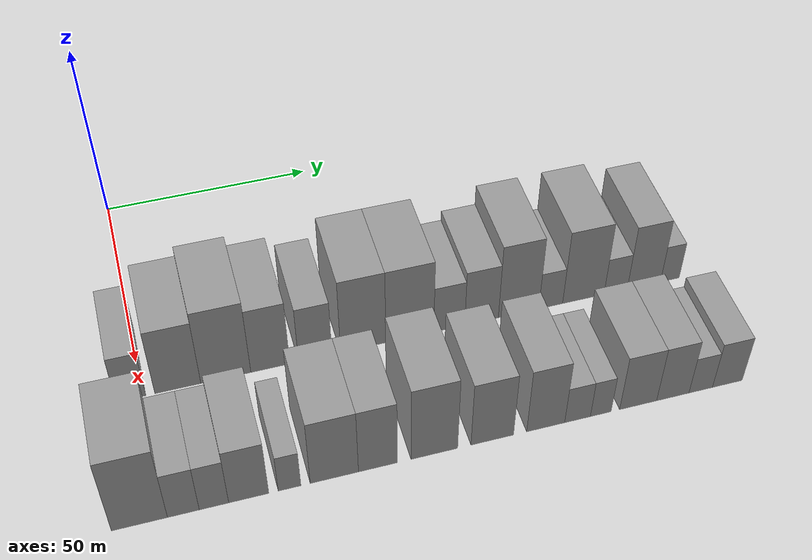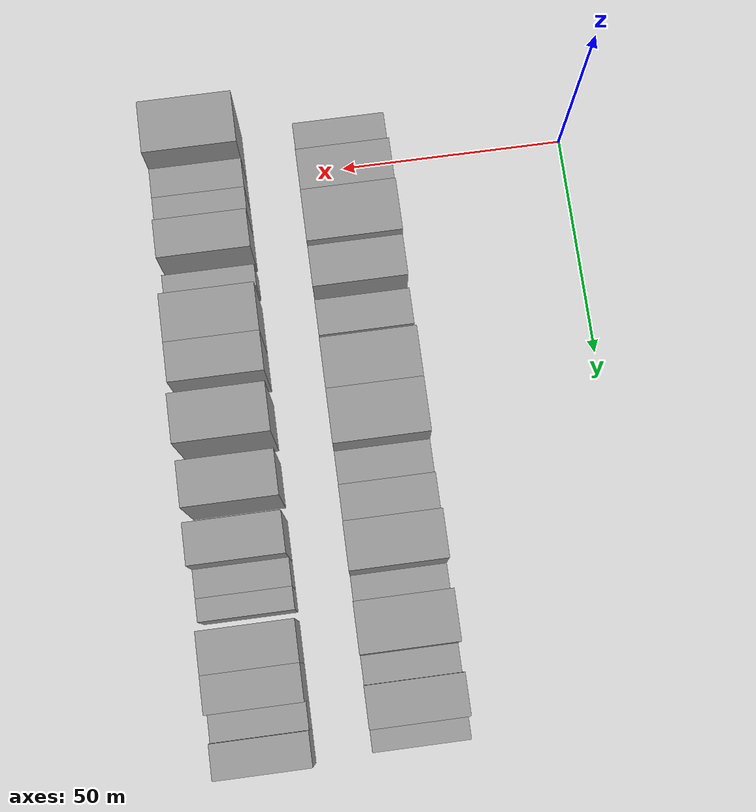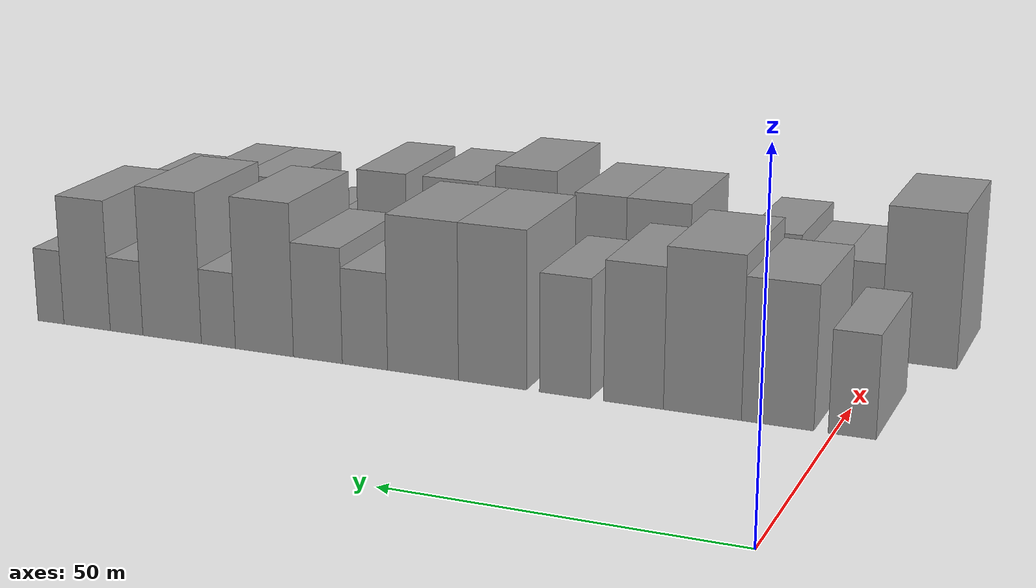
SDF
<sdf version="1.6">
 <world name="default">
  <model name="building_32">
   <static>1</static>
   <pose>50.0000 -2.4643 0 0.000000 0.000000 0.000000</pose>
   <link name="link">
    <pose>0 0 7.50 0 0 0</pose>
    <collision name="collision"><geometry><box><size>20.0000 6.6110 15.0000</size></box></geometry></collision>
    <visual name="visual">
     <cast_shadows>0</cast_shadows>
     <geometry><box><size>20.0000 6.6110 15.0000</size></box></geometry>
     <material>
      <script>
       <uri>model://grey_wall/materials/scripts</uri>
       <uri>model://grey_wall/materials/textures</uri>
       <name>vrc/grey_wall</name>
      </script>
     </material>
    </visual>
   </link>
  </model>
  <model name="building_33">
   <static>1</static>
   <pose>50.0000 7.9757 0 0.000000 0.000000 0.000000</pose>
   <link name="link">
    <pose>0 0 10.50 0 0 0</pose>
    <collision name="collision"><geometry><box><size>20.0000 10.2690 21.0000</size></box></geometry></collision>
    <visual name="visual">
     <cast_shadows>0</cast_shadows>
     <geometry><box><size>20.0000 10.2690 21.0000</size></box></geometry>
     <material>
      <script>
       <uri>model://grey_wall/materials/scripts</uri>
       <uri>model://grey_wall/materials/textures</uri>
       <name>vrc/grey_wall</name>
      </script>
     </material>
    </visual>
   </link>
  </model>
  <model name="building_34">
   <static>1</static>
   <pose>50.0000 18.7712 0 0.000000 0.000000 0.000000</pose>
   <link name="link">
    <pose>0 0 12.00 0 0 0</pose>
    <collision name="collision"><geometry><box><size>20.0000 11.3220 24.0000</size></box></geometry></collision>
    <visual name="visual">
     <cast_shadows>0</cast_shadows>
     <geometry><box><size>20.0000 11.3220 24.0000</size></box></geometry>
     <material>
      <script>
       <uri>model://grey_wall/materials/scripts</uri>
       <uri>model://grey_wall/materials/textures</uri>
       <name>vrc/grey_wall</name>
      </script>
     </material>
    </visual>
   </link>
  </model>
  <model name="building_35">
   <static>1</static>
   <pose>50.0000 28.8956 0 0.000000 0.000000 0.000000</pose>
   <link name="link">
    <pose>0 0 10.50 0 0 0</pose>
    <collision name="collision"><geometry><box><size>20.0000 8.9268 21.0000</size></box></geometry></collision>
    <visual name="visual">
     <cast_shadows>0</cast_shadows>
     <geometry><box><size>20.0000 8.9268 21.0000</size></box></geometry>
     <material>
      <script>
       <uri>model://grey_wall/materials/scripts</uri>
       <uri>model://grey_wall/materials/textures</uri>
       <name>vrc/grey_wall</name>
      </script>
     </material>
    </visual>
   </link>
  </model>
  <model name="building_36">
   <static>1</static>
   <pose>50.0000 39.2411 0 0.000000 0.000000 0.000000</pose>
   <link name="link">
    <pose>0 0 9.00 0 0 0</pose>
    <collision name="collision"><geometry><box><size>20.0000 7.7642 18.0000</size></box></geometry></collision>
    <visual name="visual">
     <cast_shadows>0</cast_shadows>
     <geometry><box><size>20.0000 7.7642 18.0000</size></box></geometry>
     <material>
      <script>
       <uri>model://grey_wall/materials/scripts</uri>
       <uri>model://grey_wall/materials/textures</uri>
       <name>vrc/grey_wall</name>
      </script>
     </material>
    </visual>
   </link>
  </model>
  <model name="building_37">
   <static>1</static>
   <pose>50.0000 50.4694 0 0.000000 0.000000 0.000000</pose>
   <link name="link">
    <pose>0 0 12.00 0 0 0</pose>
    <collision name="collision"><geometry><box><size>20.0000 10.6924 24.0000</size></box></geometry></collision>
    <visual name="visual">
     <cast_shadows>0</cast_shadows>
     <geometry><box><size>20.0000 10.6924 24.0000</size></box></geometry>
     <material>
      <script>
       <uri>model://grey_wall/materials/scripts</uri>
       <uri>model://grey_wall/materials/textures</uri>
       <name>vrc/grey_wall</name>
      </script>
     </material>
    </visual>
   </link>
  </model>
  <model name="building_38">
   <static>1</static>
   <pose>50.0000 61.5156 0 0.000000 0.000000 0.000000</pose>
   <link name="link">
    <pose>0 0 12.00 0 0 0</pose>
    <collision name="collision"><geometry><box><size>20.0000 11.3999 24.0000</size></box></geometry></collision>
    <visual name="visual">
     <cast_shadows>0</cast_shadows>
     <geometry><box><size>20.0000 11.3999 24.0000</size></box></geometry>
     <material>
      <script>
       <uri>model://grey_wall/materials/scripts</uri>
       <uri>model://grey_wall/materials/textures</uri>
       <name>vrc/grey_wall</name>
      </script>
     </material>
    </visual>
   </link>
  </model>
  <model name="building_39">
   <static>1</static>
   <pose>50.0000 70.9410 0 0.000000 0.000000 0.000000</pose>
   <link name="link">
    <pose>0 0 7.50 0 0 0</pose>
    <collision name="collision"><geometry><box><size>20.0000 7.4509 15.0000</size></box></geometry></collision>
    <visual name="visual">
     <cast_shadows>0</cast_shadows>
     <geometry><box><size>20.0000 7.4509 15.0000</size></box></geometry>
     <material>
      <script>
       <uri>model://grey_wall/materials/scripts</uri>
       <uri>model://grey_wall/materials/textures</uri>
       <name>vrc/grey_wall</name>
      </script>
     </material>
    </visual>
   </link>
  </model>
  <model name="building_40">
   <static>1</static>
   <pose>50.0000 78.7618 0 0.000000 0.000000 0.000000</pose>
   <link name="link">
    <pose>0 0 9.00 0 0 0</pose>
    <collision name="collision"><geometry><box><size>20.0000 8.1908 18.0000</size></box></geometry></collision>
    <visual name="visual">
     <cast_shadows>0</cast_shadows>
     <geometry><box><size>20.0000 8.1908 18.0000</size></box></geometry>
     <material>
      <script>
       <uri>model://grey_wall/materials/scripts</uri>
       <uri>model://grey_wall/materials/textures</uri>
       <name>vrc/grey_wall</name>
      </script>
     </material>
    </visual>
   </link>
  </model>
  <model name="building_41">
   <static>1</static>
   <pose>50.0000 87.8269 0 0.000000 0.000000 0.000000</pose>
   <link name="link">
    <pose>0 0 12.00 0 0 0</pose>
    <collision name="collision"><geometry><box><size>20.0000 9.9394 24.0000</size></box></geometry></collision>
    <visual name="visual">
     <cast_shadows>0</cast_shadows>
     <geometry><box><size>20.0000 9.9394 24.0000</size></box></geometry>
     <material>
      <script>
       <uri>model://grey_wall/materials/scripts</uri>
       <uri>model://grey_wall/materials/textures</uri>
       <name>vrc/grey_wall</name>
      </script>
     </material>
    </visual>
   </link>
  </model>
  <model name="building_42">
   <static>1</static>
   <pose>50.0000 95.7598 0 0.000000 0.000000 0.000000</pose>
   <link name="link">
    <pose>0 0 6.00 0 0 0</pose>
    <collision name="collision"><geometry><box><size>20.0000 5.9263 12.0000</size></box></geometry></collision>
    <visual name="visual">
     <cast_shadows>0</cast_shadows>
     <geometry><box><size>20.0000 5.9263 12.0000</size></box></geometry>
     <material>
      <script>
       <uri>model://grey_wall/materials/scripts</uri>
       <uri>model://grey_wall/materials/textures</uri>
       <name>vrc/grey_wall</name>
      </script>
     </material>
    </visual>
   </link>
  </model>
  <model name="building_43">
   <static>1</static>
   <pose>50.0000 103.9115 0 0.000000 0.000000 0.000000</pose>
   <link name="link">
    <pose>0 0 12.00 0 0 0</pose>
    <collision name="collision"><geometry><box><size>20.0000 10.3771 24.0000</size></box></geometry></collision>
    <visual name="visual">
     <cast_shadows>0</cast_shadows>
     <geometry><box><size>20.0000 10.3771 24.0000</size></box></geometry>
     <material>
      <script>
       <uri>model://grey_wall/materials/scripts</uri>
       <uri>model://grey_wall/materials/textures</uri>
       <name>vrc/grey_wall</name>
      </script>
     </material>
    </visual>
   </link>
  </model>
  <model name="building_44">
   <static>1</static>
   <pose>50.0000 112.0410 0 0.000000 0.000000 0.000000</pose>
   <link name="link">
    <pose>0 0 6.00 0 0 0</pose>
    <collision name="collision"><geometry><box><size>20.0000 5.8819 12.0000</size></box></geometry></collision>
    <visual name="visual">
     <cast_shadows>0</cast_shadows>
     <geometry><box><size>20.0000 5.8819 12.0000</size></box></geometry>
     <material>
      <script>
       <uri>model://grey_wall/materials/scripts</uri>
       <uri>model://grey_wall/materials/textures</uri>
       <name>vrc/grey_wall</name>
      </script>
     </material>
    </visual>
   </link>
  </model>
  <model name="building_45">
   <static>1</static>
   <pose>50.0000 119.2341 0 0.000000 0.000000 0.000000</pose>
   <link name="link">
    <pose>0 0 10.50 0 0 0</pose>
    <collision name="collision"><geometry><box><size>20.0000 8.5043 21.0000</size></box></geometry></collision>
    <visual name="visual">
     <cast_shadows>0</cast_shadows>
     <geometry><box><size>20.0000 8.5043 21.0000</size></box></geometry>
     <material>
      <script>
       <uri>model://grey_wall/materials/scripts</uri>
       <uri>model://grey_wall/materials/textures</uri>
       <name>vrc/grey_wall</name>
      </script>
     </material>
    </visual>
   </link>
  </model>
  <model name="building_46">
   <static>1</static>
   <pose>50.0000 125.8914 0 0.000000 0.000000 0.000000</pose>
   <link name="link">
    <pose>0 0 6.00 0 0 0</pose>
    <collision name="collision"><geometry><box><size>20.0000 4.8104 12.0000</size></box></geometry></collision>
    <visual name="visual">
     <cast_shadows>0</cast_shadows>
     <geometry><box><size>20.0000 4.8104 12.0000</size></box></geometry>
     <material>
      <script>
       <uri>model://grey_wall/materials/scripts</uri>
       <uri>model://grey_wall/materials/textures</uri>
       <name>vrc/grey_wall</name>
      </script>
     </material>
    </visual>
   </link>
  </model>
  <model name="building_91">
   <static>1</static>
   <pose>82.0000 -5.0672 0 0.000000 0.000000 0.000000</pose>
   <link name="link">
    <pose>0 0 12.00 0 0 0</pose>
    <collision name="collision"><geometry><box><size>20.0000 11.4733 24.0000</size></box></geometry></collision>
    <visual name="visual">
     <cast_shadows>0</cast_shadows>
     <geometry><box><size>20.0000 11.4733 24.0000</size></box></geometry>
     <material>
      <script>
       <uri>model://grey_wall/materials/scripts</uri>
       <uri>model://grey_wall/materials/textures</uri>
       <name>vrc/grey_wall</name>
      </script>
     </material>
    </visual>
   </link>
  </model>
  <model name="building_92">
   <static>1</static>
   <pose>82.0000 3.9638 0 0.000000 0.000000 0.000000</pose>
   <link name="link">
    <pose>0 0 7.50 0 0 0</pose>
    <collision name="collision"><geometry><box><size>20.0000 6.5887 15.0000</size></box></geometry></collision>
    <visual name="visual">
     <cast_shadows>0</cast_shadows>
     <geometry><box><size>20.0000 6.5887 15.0000</size></box></geometry>
     <material>
      <script>
       <uri>model://grey_wall/materials/scripts</uri>
       <uri>model://grey_wall/materials/textures</uri>
       <name>vrc/grey_wall</name>
      </script>
     </material>
    </visual>
   </link>
  </model>
  <model name="building_93">
   <static>1</static>
   <pose>82.0000 10.3303 0 0.000000 0.000000 0.000000</pose>
   <link name="link">
    <pose>0 0 7.50 0 0 0</pose>
    <collision name="collision"><geometry><box><size>20.0000 6.1444 15.0000</size></box></geometry></collision>
    <visual name="visual">
     <cast_shadows>0</cast_shadows>
     <geometry><box><size>20.0000 6.1444 15.0000</size></box></geometry>
     <material>
      <script>
       <uri>model://grey_wall/materials/scripts</uri>
       <uri>model://grey_wall/materials/textures</uri>
       <name>vrc/grey_wall</name>
      </script>
     </material>
    </visual>
   </link>
  </model>
  <model name="building_94">
   <static>1</static>
   <pose>82.0000 17.6313 0 0.000000 0.000000 0.000000</pose>
   <link name="link">
    <pose>0 0 9.00 0 0 0</pose>
    <collision name="collision"><geometry><box><size>20.0000 8.4575 18.0000</size></box></geometry></collision>
    <visual name="visual">
     <cast_shadows>0</cast_shadows>
     <geometry><box><size>20.0000 8.4575 18.0000</size></box></geometry>
     <material>
      <script>
       <uri>model://grey_wall/materials/scripts</uri>
       <uri>model://grey_wall/materials/textures</uri>
       <name>vrc/grey_wall</name>
      </script>
     </material>
    </visual>
   </link>
  </model>
  <model name="building_95">
   <static>1</static>
   <pose>82.0000 26.2788 0 0.000000 0.000000 0.000000</pose>
   <link name="link">
    <pose>0 0 6.00 0 0 0</pose>
    <collision name="collision"><geometry><box><size>20.0000 4.8377 12.0000</size></box></geometry></collision>
    <visual name="visual">
     <cast_shadows>0</cast_shadows>
     <geometry><box><size>20.0000 4.8377 12.0000</size></box></geometry>
     <material>
      <script>
       <uri>model://grey_wall/materials/scripts</uri>
       <uri>model://grey_wall/materials/textures</uri>
       <name>vrc/grey_wall</name>
      </script>
     </material>
    </visual>
   </link>
  </model>
  <model name="building_96">
   <static>1</static>
   <pose>82.0000 35.9110 0 0.000000 0.000000 0.000000</pose>
   <link name="link">
    <pose>0 0 10.50 0 0 0</pose>
    <collision name="collision"><geometry><box><size>20.0000 10.4268 21.0000</size></box></geometry></collision>
    <visual name="visual">
     <cast_shadows>0</cast_shadows>
     <geometry><box><size>20.0000 10.4268 21.0000</size></box></geometry>
     <material>
      <script>
       <uri>model://grey_wall/materials/scripts</uri>
       <uri>model://grey_wall/materials/textures</uri>
       <name>vrc/grey_wall</name>
      </script>
     </material>
    </visual>
   </link>
  </model>
  <model name="building_97">
   <static>1</static>
   <pose>82.0000 45.3883 0 0.000000 0.000000 0.000000</pose>
   <link name="link">
    <pose>0 0 10.50 0 0 0</pose>
    <collision name="collision"><geometry><box><size>20.0000 8.5277 21.0000</size></box></geometry></collision>
    <visual name="visual">
     <cast_shadows>0</cast_shadows>
     <geometry><box><size>20.0000 8.5277 21.0000</size></box></geometry>
     <material>
      <script>
       <uri>model://grey_wall/materials/scripts</uri>
       <uri>model://grey_wall/materials/textures</uri>
       <name>vrc/grey_wall</name>
      </script>
     </material>
    </visual>
   </link>
  </model>
  <model name="building_98">
   <static>1</static>
   <pose>82.0000 57.8281 0 0.000000 0.000000 0.000000</pose>
   <link name="link">
    <pose>0 0 12.00 0 0 0</pose>
    <collision name="collision"><geometry><box><size>20.0000 10.3519 24.0000</size></box></geometry></collision>
    <visual name="visual">
     <cast_shadows>0</cast_shadows>
     <geometry><box><size>20.0000 10.3519 24.0000</size></box></geometry>
     <material>
      <script>
       <uri>model://grey_wall/materials/scripts</uri>
       <uri>model://grey_wall/materials/textures</uri>
       <name>vrc/grey_wall</name>
      </script>
     </material>
    </visual>
   </link>
  </model>
  <model name="building_99">
   <static>1</static>
   <pose>82.0000 70.8132 0 0.000000 0.000000 0.000000</pose>
   <link name="link">
    <pose>0 0 10.50 0 0 0</pose>
    <collision name="collision"><geometry><box><size>20.0000 9.6183 21.0000</size></box></geometry></collision>
    <visual name="visual">
     <cast_shadows>0</cast_shadows>
     <geometry><box><size>20.0000 9.6183 21.0000</size></box></geometry>
     <material>
      <script>
       <uri>model://grey_wall/materials/scripts</uri>
       <uri>model://grey_wall/materials/textures</uri>
       <name>vrc/grey_wall</name>
      </script>
     </material>
    </visual>
   </link>
  </model>
  <model name="building_100">
   <static>1</static>
   <pose>82.0000 82.9843 0 0.000000 0.000000 0.000000</pose>
   <link name="link">
    <pose>0 0 10.50 0 0 0</pose>
    <collision name="collision"><geometry><box><size>20.0000 8.7239 21.0000</size></box></geometry></collision>
    <visual name="visual">
     <cast_shadows>0</cast_shadows>
     <geometry><box><size>20.0000 8.7239 21.0000</size></box></geometry>
     <material>
      <script>
       <uri>model://grey_wall/materials/scripts</uri>
       <uri>model://grey_wall/materials/textures</uri>
       <name>vrc/grey_wall</name>
      </script>
     </material>
    </visual>
   </link>
  </model>
  <model name="building_101">
   <static>1</static>
   <pose>82.0000 90.3306 0 0.000000 0.000000 0.000000</pose>
   <link name="link">
    <pose>0 0 6.00 0 0 0</pose>
    <collision name="collision"><geometry><box><size>20.0000 5.9687 12.0000</size></box></geometry></collision>
    <visual name="visual">
     <cast_shadows>0</cast_shadows>
     <geometry><box><size>20.0000 5.9687 12.0000</size></box></geometry>
     <material>
      <script>
       <uri>model://grey_wall/materials/scripts</uri>
       <uri>model://grey_wall/materials/textures</uri>
       <name>vrc/grey_wall</name>
      </script>
     </material>
    </visual>
   </link>
  </model>
  <model name="building_102">
   <static>1</static>
   <pose>82.0000 95.7303 0 0.000000 0.000000 0.000000</pose>
   <link name="link">
    <pose>0 0 6.00 0 0 0</pose>
    <collision name="collision"><geometry><box><size>20.0000 4.8308 12.0000</size></box></geometry></collision>
    <visual name="visual">
     <cast_shadows>0</cast_shadows>
     <geometry><box><size>20.0000 4.8308 12.0000</size></box></geometry>
     <material>
      <script>
       <uri>model://grey_wall/materials/scripts</uri>
       <uri>model://grey_wall/materials/textures</uri>
       <name>vrc/grey_wall</name>
      </script>
     </material>
    </visual>
   </link>
  </model>
  <model name="building_103">
   <static>1</static>
   <pose>82.0000 104.5141 0 0.000000 0.000000 0.000000</pose>
   <link name="link">
    <pose>0 0 9.00 0 0 0</pose>
    <collision name="collision"><geometry><box><size>20.0000 8.7368 18.0000</size></box></geometry></collision>
    <visual name="visual">
     <cast_shadows>0</cast_shadows>
     <geometry><box><size>20.0000 8.7368 18.0000</size></box></geometry>
     <material>
      <script>
       <uri>model://grey_wall/materials/scripts</uri>
       <uri>model://grey_wall/materials/textures</uri>
       <name>vrc/grey_wall</name>
      </script>
     </material>
    </visual>
   </link>
  </model>
  <model name="building_104">
   <static>1</static>
   <pose>82.0000 112.7400 0 0.000000 0.000000 0.000000</pose>
   <link name="link">
    <pose>0 0 9.00 0 0 0</pose>
    <collision name="collision"><geometry><box><size>20.0000 7.7150 18.0000</size></box></geometry></collision>
    <visual name="visual">
     <cast_shadows>0</cast_shadows>
     <geometry><box><size>20.0000 7.7150 18.0000</size></box></geometry>
     <material>
      <script>
       <uri>model://grey_wall/materials/scripts</uri>
       <uri>model://grey_wall/materials/textures</uri>
       <name>vrc/grey_wall</name>
      </script>
     </material>
    </visual>
   </link>
  </model>
  <model name="building_105">
   <static>1</static>
   <pose>82.0000 119.4201 0 0.000000 0.000000 0.000000</pose>
   <link name="link">
    <pose>0 0 6.00 0 0 0</pose>
    <collision name="collision"><geometry><box><size>20.0000 5.6452 12.0000</size></box></geometry></collision>
    <visual name="visual">
     <cast_shadows>0</cast_shadows>
     <geometry><box><size>20.0000 5.6452 12.0000</size></box></geometry>
     <material>
      <script>
       <uri>model://grey_wall/materials/scripts</uri>
       <uri>model://grey_wall/materials/textures</uri>
       <name>vrc/grey_wall</name>
      </script>
     </material>
    </visual>
   </link>
  </model>
  <model name="building_106">
   <static>1</static>
   <pose>82.0000 125.8480 0 0.000000 0.000000 0.000000</pose>
   <link name="link">
    <pose>0 0 7.50 0 0 0</pose>
    <collision name="collision"><geometry><box><size>20.0000 7.2107 15.0000</size></box></geometry></collision>
    <visual name="visual">
     <cast_shadows>0</cast_shadows>
     <geometry><box><size>20.0000 7.2107 15.0000</size></box></geometry>
     <material>
      <script>
       <uri>model://grey_wall/materials/scripts</uri>
       <uri>model://grey_wall/materials/textures</uri>
       <name>vrc/grey_wall</name>
      </script>
     </material>
    </visual>
   </link>
  </model>
 </world>
</sdf>
